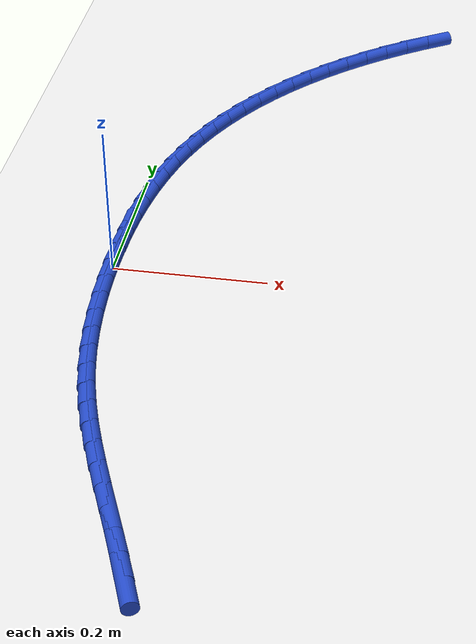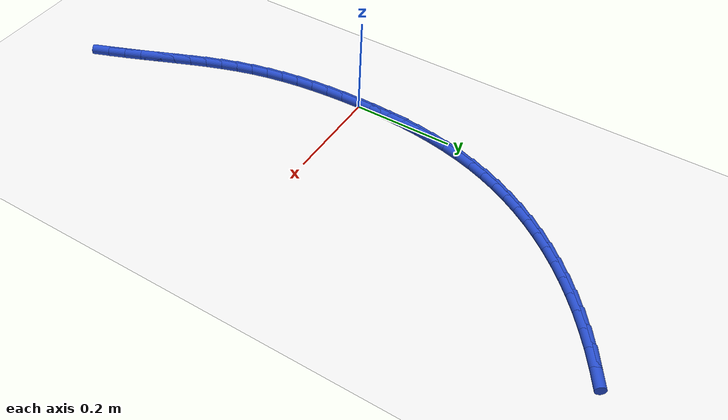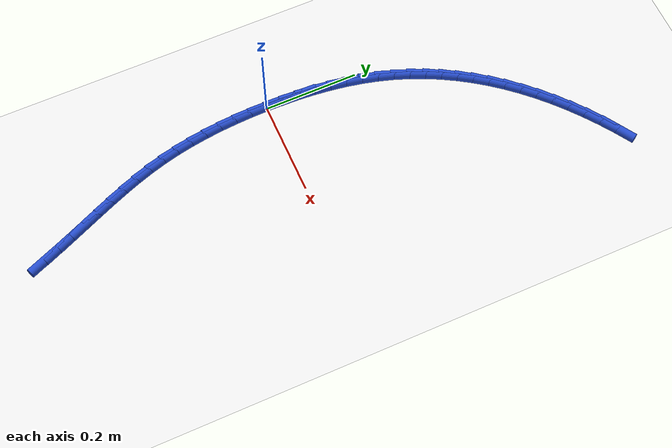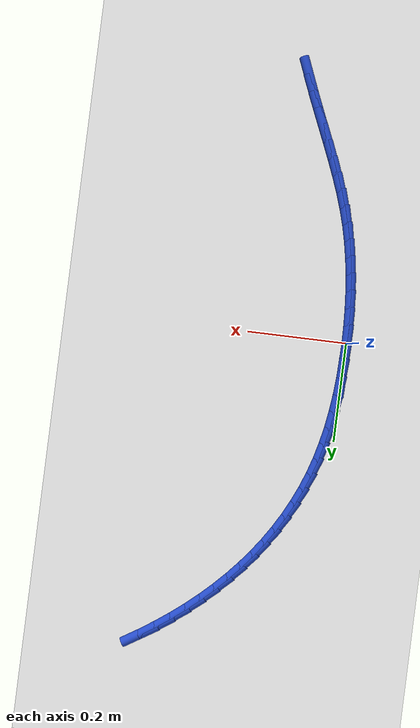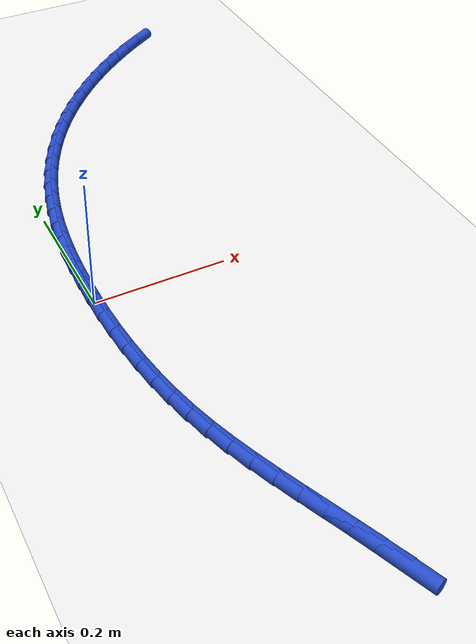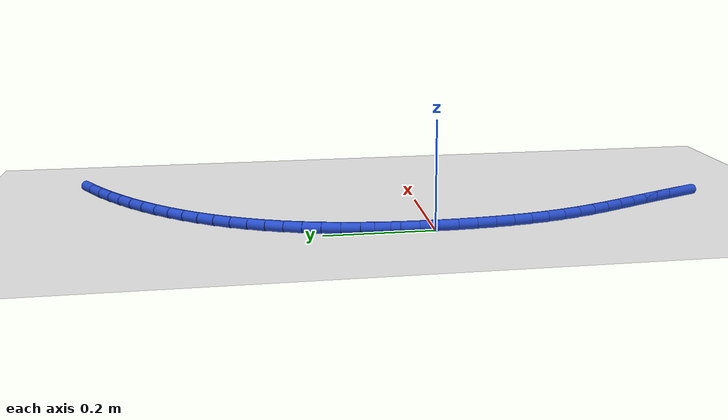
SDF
<sdf version="1.6">
 <world name="default">
  <model name="ground_plane">
   <static>1</static>
   <link name="link">
    <collision name="collision">
     <geometry><plane><normal>0 0 1</normal><size>100 100</size></plane></geometry>
     <surface><friction><ode><mu>100</mu><mu2>50</mu2></ode></friction></surface>
    </collision>
    <visual name="visual">
     <cast_shadows>0</cast_shadows>
     <geometry><plane><normal>0 0 1</normal><size>100 100</size></plane></geometry>
     <material>
      <script><uri>file://media/materials/scripts/gazebo.material</uri><name>Gazebo/WhiteGlow</name></script>
     </material>
    </visual>
   </link>
  </model>
  <model name="line">
   <link name="link_0">
    <pose>9.107298248878237e-18 -2.0816681711721685e-17 0.01 0 1.57 1.5601741036166836</pose>
    <collision name="collision">
     <geometry><cylinder><radius>0.01</radius><length>0.08</length></cylinder></geometry>
    </collision>
    <visual name="visual">
     <material>
      <script><name>Gazebo/Blue</name><uri>file://media/materials/scripts/gazebo.material</uri></script>
     </material>
     <geometry><cylinder><radius>0.01</radius><length>0.08</length></cylinder></geometry>
    </visual>
   </link>
   <link name="link_1">
    <pose>0.0003696576563248758 0.034799094972297426 0.01 0 1.57 1.5300016208745044</pose>
    <collision name="collision">
     <geometry><cylinder><radius>0.01</radius><length>0.08</length></cylinder></geometry>
    </collision>
    <visual name="visual">
     <material>
      <script><name>Gazebo/Blue</name><uri>file://media/materials/scripts/gazebo.material</uri></script>
     </material>
     <geometry><cylinder><radius>0.01</radius><length>0.08</length></cylinder></geometry>
    </visual>
   </link>
   <link name="link_2">
    <pose>0.0017872789832463405 0.06952994551020442 0.01 0 1.57 1.4964612532507076</pose>
    <collision name="collision">
     <geometry><cylinder><radius>0.01</radius><length>0.08</length></cylinder></geometry>
    </collision>
    <visual name="visual">
     <material>
      <script><name>Gazebo/Blue</name><uri>file://media/materials/scripts/gazebo.material</uri></script>
     </material>
     <geometry><cylinder><radius>0.01</radius><length>0.08</length></cylinder></geometry>
    </visual>
   </link>
   <link name="link_3">
    <pose>0.004360169303764804 0.10407823398300506 0.01 0 1.57 1.459281129061944</pose>
    <collision name="collision">
     <geometry><cylinder><radius>0.01</radius><length>0.08</length></cylinder></geometry>
    </collision>
    <visual name="visual">
     <material>
      <script><name>Gazebo/Blue</name><uri>file://media/materials/scripts/gazebo.material</uri></script>
     </material>
     <geometry><cylinder><radius>0.01</radius><length>0.08</length></cylinder></geometry>
    </visual>
   </link>
   <link name="link_4">
    <pose>0.008195633940880662 0.13832964275998344 0.01 0 1.57 1.418171307728434</pose>
    <collision name="collision">
     <geometry><cylinder><radius>0.01</radius><length>0.08</length></cylinder></geometry>
    </collision>
    <visual name="visual">
     <material>
      <script><name>Gazebo/Blue</name><uri>file://media/materials/scripts/gazebo.material</uri></script>
     </material>
     <geometry><cylinder><radius>0.01</radius><length>0.08</length></cylinder></geometry>
    </visual>
   </link>
   <link name="link_5">
    <pose>0.013400978217594315 0.17216985421042363 0.01 0 1.57 1.3728354203693114</pose>
    <collision name="collision">
     <geometry><cylinder><radius>0.01</radius><length>0.08</length></cylinder></geometry>
    </collision>
    <visual name="visual">
     <material>
      <script><name>Gazebo/Blue</name><uri>file://media/materials/scripts/gazebo.material</uri></script>
     </material>
     <geometry><cylinder><radius>0.01</radius><length>0.08</length></cylinder></geometry>
    </visual>
   </link>
   <link name="link_6">
    <pose>0.020083507456906152 0.2054845507036096 0.01 0 1.57 1.322988109672323</pose>
    <collision name="collision">
     <geometry><cylinder><radius>0.01</radius><length>0.08</length></cylinder></geometry>
    </collision>
    <visual name="visual">
     <material>
      <script><name>Gazebo/Blue</name><uri>file://media/materials/scripts/gazebo.material</uri></script>
     </material>
     <geometry><cylinder><radius>0.01</radius><length>0.08</length></cylinder></geometry>
    </visual>
   </link>
   <link name="link_7">
    <pose>0.028350526981816584 0.2381594146088255 0.01 0 1.57 1.2686378744577775</pose>
    <collision name="collision">
     <geometry><cylinder><radius>0.01</radius><length>0.08</length></cylinder></geometry>
    </collision>
    <visual name="visual">
     <material>
      <script><name>Gazebo/Blue</name><uri>file://media/materials/scripts/gazebo.material</uri></script>
     </material>
     <geometry><cylinder><radius>0.01</radius><length>0.08</length></cylinder></geometry>
    </visual>
   </link>
   <link name="link_8">
    <pose>0.03830207136026903 0.2700857994772335 0.01 0 1.57 1.2126364870890947</pose>
    <collision name="collision">
     <geometry><cylinder><radius>0.01</radius><length>0.08</length></cylinder></geometry>
    </collision>
    <visual name="visual">
     <material>
      <script><name>Gazebo/Blue</name><uri>file://media/materials/scripts/gazebo.material</uri></script>
     </material>
     <geometry><cylinder><radius>0.01</radius><length>0.08</length></cylinder></geometry>
    </visual>
   </link>
   <link name="link_9">
    <pose>0.049955530400666845 0.30121952169211785 0.01 0 1.57 1.157071261311305</pose>
    <collision name="collision">
     <geometry><cylinder><radius>0.01</radius><length>0.08</length></cylinder></geometry>
    </collision>
    <visual name="visual">
     <material>
      <script><name>Gazebo/Blue</name><uri>file://media/materials/scripts/gazebo.material</uri></script>
     </material>
     <geometry><cylinder><radius>0.01</radius><length>0.08</length></cylinder></geometry>
    </visual>
   </link>
   <link name="link_10">
    <pose>0.06327585301400085 0.3315573014857785 0.01 0 1.57 1.1022400500316027</pose>
    <collision name="collision">
     <geometry><cylinder><radius>0.01</radius><length>0.08</length></cylinder></geometry>
    </collision>
    <visual name="visual">
     <material>
      <script><name>Gazebo/Blue</name><uri>file://media/materials/scripts/gazebo.material</uri></script>
     </material>
     <geometry><cylinder><radius>0.01</radius><length>0.08</length></cylinder></geometry>
    </visual>
   </link>
   <link name="link_11">
    <pose>0.07822715272236105 0.36109651069304693 0.01 0 1.57 1.0483860194654706</pose>
    <collision name="collision">
     <geometry><cylinder><radius>0.01</radius><length>0.08</length></cylinder></geometry>
    </collision>
    <visual name="visual">
     <material>
      <script><name>Gazebo/Blue</name><uri>file://media/materials/scripts/gazebo.material</uri></script>
     </material>
     <geometry><cylinder><radius>0.01</radius><length>0.08</length></cylinder></geometry>
    </visual>
   </link>
   <link name="link_12">
    <pose>0.09477354304783739 0.38983452114875394 0.01 0 1.57 0.9957213868042988</pose>
    <collision name="collision">
     <geometry><cylinder><radius>0.01</radius><length>0.08</length></cylinder></geometry>
    </collision>
    <visual name="visual">
     <material>
      <script><name>Gazebo/Blue</name><uri>file://media/materials/scripts/gazebo.material</uri></script>
     </material>
     <geometry><cylinder><radius>0.01</radius><length>0.08</length></cylinder></geometry>
    </visual>
   </link>
   <link name="link_13">
    <pose>0.1128791375125198 0.4177687046877306 0.01 0 1.57 0.9444236330649348</pose>
    <collision name="collision">
     <geometry><cylinder><radius>0.01</radius><length>0.08</length></cylinder></geometry>
    </collision>
    <visual name="visual">
     <material>
      <script><name>Gazebo/Blue</name><uri>file://media/materials/scripts/gazebo.material</uri></script>
     </material>
     <geometry><cylinder><radius>0.01</radius><length>0.08</length></cylinder></geometry>
    </visual>
   </link>
   <link name="link_14">
    <pose>0.13250804963849813 0.444896433144808 0.01 0 1.57 0.8946338466139881</pose>
    <collision name="collision">
     <geometry><cylinder><radius>0.01</radius><length>0.08</length></cylinder></geometry>
    </collision>
    <visual name="visual">
     <material>
      <script><name>Gazebo/Blue</name><uri>file://media/materials/scripts/gazebo.material</uri></script>
     </material>
     <geometry><cylinder><radius>0.01</radius><length>0.08</length></cylinder></geometry>
    </visual>
   </link>
   <link name="link_15">
    <pose>0.15362439294786245 0.4712150783548174 0.01 0 1.57 0.8464569948748563</pose>
    <collision name="collision">
     <geometry><cylinder><radius>0.01</radius><length>0.08</length></cylinder></geometry>
    </collision>
    <visual name="visual">
     <material>
      <script><name>Gazebo/Blue</name><uri>file://media/materials/scripts/gazebo.material</uri></script>
     </material>
     <geometry><cylinder><radius>0.01</radius><length>0.08</length></cylinder></geometry>
    </visual>
   </link>
   <link name="link_16">
    <pose>0.1761922809627027 0.49672201215258993 0.01 0 1.57 0.7999637765977934</pose>
    <collision name="collision">
     <geometry><cylinder><radius>0.01</radius><length>0.08</length></cylinder></geometry>
    </collision>
    <visual name="visual">
     <material>
      <script><name>Gazebo/Blue</name><uri>file://media/materials/scripts/gazebo.material</uri></script>
     </material>
     <geometry><cylinder><radius>0.01</radius><length>0.08</length></cylinder></geometry>
    </visual>
   </link>
   <link name="link_17">
    <pose>0.20017582720510874 0.5214146063729563 0.01 0 1.57 0.7551936354759681</pose>
    <collision name="collision">
     <geometry><cylinder><radius>0.01</radius><length>0.08</length></cylinder></geometry>
    </collision>
    <visual name="visual">
     <material>
      <script><name>Gazebo/Blue</name><uri>file://media/materials/scripts/gazebo.material</uri></script>
     </material>
     <geometry><cylinder><radius>0.01</radius><length>0.08</length></cylinder></geometry>
    </visual>
   </link>
   <link name="link_18">
    <pose>0.22553914519717053 0.5452902328507481 0.01 0 1.57 0.7121585098736961</pose>
    <collision name="collision">
     <geometry><cylinder><radius>0.01</radius><length>0.08</length></cylinder></geometry>
    </collision>
    <visual name="visual">
     <material>
      <script><name>Gazebo/Blue</name><uri>file://media/materials/scripts/gazebo.material</uri></script>
     </material>
     <geometry><cylinder><radius>0.01</radius><length>0.08</length></cylinder></geometry>
    </visual>
   </link>
   <link name="link_19">
    <pose>0.25224634846097793 0.568346263420796 0.01 0 1.57 0.6708469357460872</pose>
    <collision name="collision">
     <geometry><cylinder><radius>0.01</radius><length>0.08</length></cylinder></geometry>
    </collision>
    <visual name="visual">
     <material>
      <script><name>Gazebo/Blue</name><uri>file://media/materials/scripts/gazebo.material</uri></script>
     </material>
     <geometry><cylinder><radius>0.01</radius><length>0.08</length></cylinder></geometry>
    </visual>
   </link>
   <link name="link_20">
    <pose>0.28026155051862117 0.5905800699179314 0.01 0 1.57 0.6312281904492969</pose>
    <collision name="collision">
     <geometry><cylinder><radius>0.01</radius><length>0.08</length></cylinder></geometry>
    </collision>
    <visual name="visual">
     <material>
      <script><name>Gazebo/Blue</name><uri>file://media/materials/scripts/gazebo.material</uri></script>
     </material>
     <geometry><cylinder><radius>0.01</radius><length>0.08</length></cylinder></geometry>
    </visual>
   </link>
   <link name="link_21">
    <pose>0.3095488648921899 0.6119890241769853 0.01 0 1.57 0.5932562461430482</pose>
    <collision name="collision">
     <geometry><cylinder><radius>0.01</radius><length>0.08</length></cylinder></geometry>
    </collision>
    <visual name="visual">
     <material>
      <script><name>Gazebo/Blue</name><uri>file://media/materials/scripts/gazebo.material</uri></script>
     </material>
     <geometry><cylinder><radius>0.01</radius><length>0.08</length></cylinder></geometry>
    </visual>
   </link>
   <link name="link_22">
    <pose>0.34007240510377407 0.6325704980327886 0.01 0 1.57 0.5568733796082187</pose>
    <collision name="collision">
     <geometry><cylinder><radius>0.01</radius><length>0.08</length></cylinder></geometry>
    </collision>
    <visual name="visual">
     <material>
      <script><name>Gazebo/Blue</name><uri>file://media/materials/scripts/gazebo.material</uri></script>
     </material>
     <geometry><cylinder><radius>0.01</radius><length>0.08</length></cylinder></geometry>
    </visual>
   </link>
   <link name="link_234">
    <pose>0.14206264817819406 -0.5265569020858273 0.01 0 1.57 -1.183860582928243</pose>
    <collision name="collision">
     <geometry><cylinder><radius>0.01</radius><length>0.08</length></cylinder></geometry>
    </collision>
    <visual name="visual">
     <material>
      <script><name>Gazebo/Blue</name><uri>file://media/materials/scripts/gazebo.material</uri></script>
     </material>
     <geometry><cylinder><radius>0.01</radius><length>0.08</length></cylinder></geometry>
    </visual>
   </link>
   <link name="link_235">
    <pose>0.12845141346800865 -0.4931532464173698 0.01 0 1.57 -1.1709508392975</pose>
    <collision name="collision">
     <geometry><cylinder><radius>0.01</radius><length>0.08</length></cylinder></geometry>
    </collision>
    <visual name="visual">
     <material>
      <script><name>Gazebo/Blue</name><uri>file://media/materials/scripts/gazebo.material</uri></script>
     </material>
     <geometry><cylinder><radius>0.01</radius><length>0.08</length></cylinder></geometry>
    </visual>
   </link>
   <link name="link_236">
    <pose>0.11461440751362716 -0.460411546052219 0.01 0 1.57 -1.1613974362372956</pose>
    <collision name="collision">
     <geometry><cylinder><radius>0.01</radius><length>0.08</length></cylinder></geometry>
    </collision>
    <visual name="visual">
     <material>
      <script><name>Gazebo/Blue</name><uri>file://media/materials/scripts/gazebo.material</uri></script>
     </material>
     <geometry><cylinder><radius>0.01</radius><length>0.08</length></cylinder></geometry>
    </visual>
   </link>
   <link name="link_237">
    <pose>0.10067068910490858 -0.4282769970524837 0.01 0 1.57 -1.1601167913862358</pose>
    <collision name="collision">
     <geometry><cylinder><radius>0.01</radius><length>0.08</length></cylinder></geometry>
    </collision>
    <visual name="visual">
     <material>
      <script><name>Gazebo/Blue</name><uri>file://media/materials/scripts/gazebo.material</uri></script>
     </material>
     <geometry><cylinder><radius>0.01</radius><length>0.08</length></cylinder></geometry>
    </visual>
   </link>
   <link name="link_238">
    <pose>0.08686401721368425 -0.39656954567226405 0.01 0 1.57 -1.1675278026760523</pose>
    <collision name="collision">
     <geometry><cylinder><radius>0.01</radius><length>0.08</length></cylinder></geometry>
    </collision>
    <visual name="visual">
     <material>
      <script><name>Gazebo/Blue</name><uri>file://media/materials/scripts/gazebo.material</uri></script>
     </material>
     <geometry><cylinder><radius>0.01</radius><length>0.08</length></cylinder></geometry>
    </visual>
   </link>
   <link name="link_239">
    <pose>0.07344041961556527 -0.36510685936194603 0.01 0 1.57 -1.1838714585047705</pose>
    <collision name="collision">
     <geometry><cylinder><radius>0.01</radius><length>0.08</length></cylinder></geometry>
    </collision>
    <visual name="visual">
     <material>
      <script><name>Gazebo/Blue</name><uri>file://media/materials/scripts/gazebo.material</uri></script>
     </material>
     <geometry><cylinder><radius>0.01</radius><length>0.08</length></cylinder></geometry>
    </visual>
   </link>
   <link name="link_240">
    <pose>0.060645924086163094 -0.33370660557191645 0.01 0 1.57 -1.2092663349712642</pose>
    <collision name="collision">
     <geometry><cylinder><radius>0.01</radius><length>0.08</length></cylinder></geometry>
    </collision>
    <visual name="visual">
     <material>
      <script><name>Gazebo/Blue</name><uri>file://media/materials/scripts/gazebo.material</uri></script>
     </material>
     <geometry><cylinder><radius>0.01</radius><length>0.08</length></cylinder></geometry>
    </visual>
   </link>
   <link name="link_241">
    <pose>0.04872655840108806 -0.30218645175255954 0.01 0 1.57 -1.2436608357938599</pose>
    <collision name="collision">
     <geometry><cylinder><radius>0.01</radius><length>0.08</length></cylinder></geometry>
    </collision>
    <visual name="visual">
     <material>
      <script><name>Gazebo/Blue</name><uri>file://media/materials/scripts/gazebo.material</uri></script>
     </material>
     <geometry><cylinder><radius>0.01</radius><length>0.08</length></cylinder></geometry>
    </visual>
   </link>
   <link name="link_242">
    <pose>0.03792835033595166 -0.2703640653542622 0.01 0 1.57 -1.2867024417765456</pose>
    <collision name="collision">
     <geometry><cylinder><radius>0.01</radius><length>0.08</length></cylinder></geometry>
    </collision>
    <visual name="visual">
     <material>
      <script><name>Gazebo/Blue</name><uri>file://media/materials/scripts/gazebo.material</uri></script>
     </material>
     <geometry><cylinder><radius>0.01</radius><length>0.08</length></cylinder></geometry>
    </visual>
   </link>
   <link name="link_243">
    <pose>0.028495420900869844 -0.23805862439249179 0.01 0 1.57 -1.3337175376368617</pose>
    <collision name="collision">
     <geometry><cylinder><radius>0.01</radius><length>0.08</length></cylinder></geometry>
    </collision>
    <visual name="visual">
     <material>
      <script><name>Gazebo/Blue</name><uri>file://media/materials/scripts/gazebo.material</uri></script>
     </material>
     <geometry><cylinder><radius>0.01</radius><length>0.08</length></cylinder></geometry>
    </visual>
   </link>
   <link name="link_244">
    <pose>0.020552195364726435 -0.20518413144691494 0.01 0 1.57 -1.377964512546603</pose>
    <collision name="collision">
     <geometry><cylinder><radius>0.01</radius><length>0.08</length></cylinder></geometry>
    </collision>
    <visual name="visual">
     <material>
      <script><name>Gazebo/Blue</name><uri>file://media/materials/scripts/gazebo.material</uri></script>
     </material>
     <geometry><cylinder><radius>0.01</radius><length>0.08</length></cylinder></geometry>
    </visual>
   </link>
   <link name="link_245">
    <pose>0.01403446328953838 -0.17180402882255424 0.01 0 1.57 -1.4189665062280268</pose>
    <collision name="collision">
     <geometry><cylinder><radius>0.01</radius><length>0.08</length></cylinder></geometry>
    </collision>
    <visual name="visual">
     <material>
      <script><name>Gazebo/Blue</name><uri>file://media/materials/scripts/gazebo.material</uri></script>
     </material>
     <geometry><cylinder><radius>0.01</radius><length>0.08</length></cylinder></geometry>
    </visual>
   </link>
   <link name="link_246">
    <pose>0.008861418823079148 -0.13799490593315278 0.01 0 1.57 -1.4568602750905393</pose>
    <collision name="collision">
     <geometry><cylinder><radius>0.01</radius><length>0.08</length></cylinder></geometry>
    </collision>
    <visual name="visual">
     <material>
      <script><name>Gazebo/Blue</name><uri>file://media/materials/scripts/gazebo.material</uri></script>
     </material>
     <geometry><cylinder><radius>0.01</radius><length>0.08</length></cylinder></geometry>
    </visual>
   </link>
   <link name="link_247">
    <pose>0.004952256113122222 -0.1038333521924536 0.01 0 1.57 -1.4918004025386271</pose>
    <collision name="collision">
     <geometry><cylinder><radius>0.01</radius><length>0.08</length></cylinder></geometry>
    </collision>
    <visual name="visual">
     <material>
      <script><name>Gazebo/Blue</name><uri>file://media/materials/scripts/gazebo.material</uri></script>
     </material>
     <geometry><cylinder><radius>0.01</radius><length>0.08</length></cylinder></geometry>
    </visual>
   </link>
   <link name="link_248">
    <pose>0.0022261693074410753 -0.06939595701419977 0.01 0 1.57 -1.523949163339939</pose>
    <collision name="collision">
     <geometry><cylinder><radius>0.01</radius><length>0.08</length></cylinder></geometry>
    </collision>
    <visual name="visual">
     <material>
      <script><name>Gazebo/Blue</name><uri>file://media/materials/scripts/gazebo.material</uri></script>
     </material>
     <geometry><cylinder><radius>0.01</radius><length>0.08</length></cylinder></geometry>
    </visual>
   </link>
   <link name="link_249">
    <pose>0.0006023525538091847 -0.034759309812134306 0.01 0 1.57 -1.553468817362302</pose>
    <collision name="collision">
     <geometry><cylinder><radius>0.01</radius><length>0.08</length></cylinder></geometry>
    </collision>
    <visual name="visual">
     <material>
      <script><name>Gazebo/Blue</name><uri>file://media/materials/scripts/gazebo.material</uri></script>
     </material>
     <geometry><cylinder><radius>0.01</radius><length>0.08</length></cylinder></geometry>
    </visual>
   </link>
   <link name="link_250">
    <pose>2.0816681711721685e-17 -2.5673907444456745e-16 0.01 0 1.57 1.5610767055434567</pose>
    <collision name="collision">
     <geometry><cylinder><radius>0.01</radius><length>0.08</length></cylinder></geometry>
    </collision>
    <visual name="visual">
     <material>
      <script><name>Gazebo/Blue</name><uri>file://media/materials/scripts/gazebo.material</uri></script>
     </material>
     <geometry><cylinder><radius>0.01</radius><length>0.08</length></cylinder></geometry>
    </visual>
   </link>
   <link name="link_251">
    <pose>0.0003383057937870618 0.034805383008459326 0.01 0 1.57 1.536355231406358</pose>
    <collision name="collision">
     <geometry><cylinder><radius>0.01</radius><length>0.08</length></cylinder></geometry>
    </collision>
    <visual name="visual">
     <material>
      <script><name>Gazebo/Blue</name><uri>file://media/materials/scripts/gazebo.material</uri></script>
     </material>
     <geometry><cylinder><radius>0.01</radius><length>0.08</length></cylinder></geometry>
    </visual>
   </link>
   <link name="link_252">
    <pose>0.0015364640829437799 0.06958024979950139 0.01 0 1.57 1.5487180153701536</pose>
    <collision name="collision">
     <geometry><cylinder><radius>0.01</radius><length>0.08</length></cylinder></geometry>
    </collision>
    <visual name="visual">
     <material>
      <script><name>Gazebo/Blue</name><uri>file://media/materials/scripts/gazebo.material</uri></script>
     </material>
     <geometry><cylinder><radius>0.01</radius><length>0.08</length></cylinder></geometry>
    </visual>
   </link>
  </model>
 </world>
</sdf>
